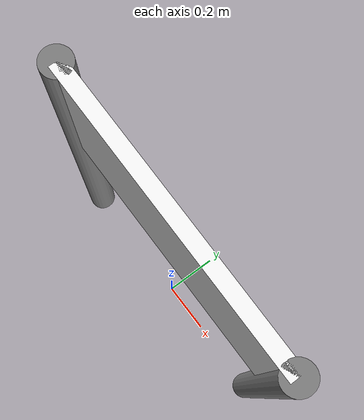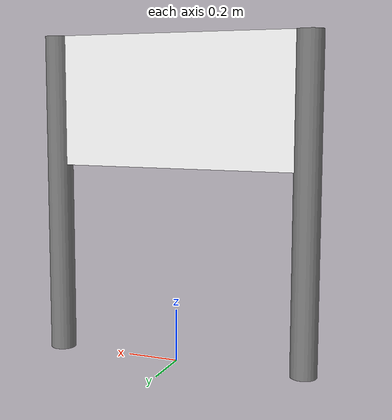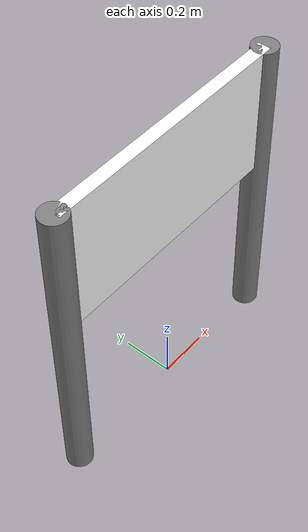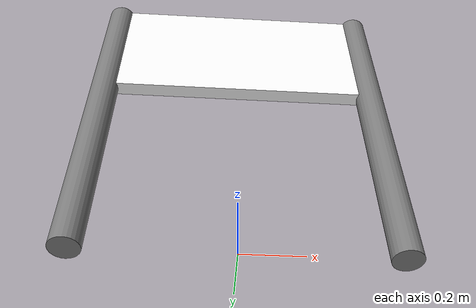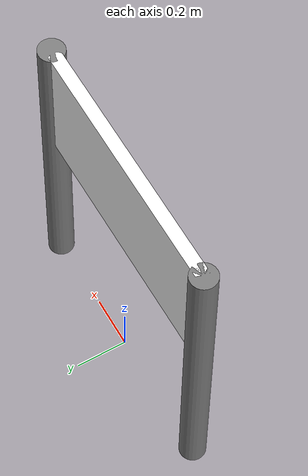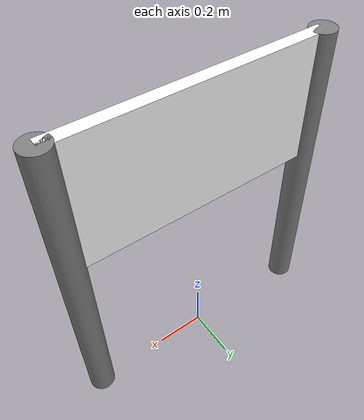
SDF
<?xml version="1.0"?>
<sdf version="1.6">
    <model name = "whiteboard">
        <static>true</static>
        <pose>0 0 0 0 0 0</pose>

        <!-- Vertical Poles-->
        <link name="stand_pole_left">
        <pose>-0.5 0 0.625 0 0 0</pose>
        <visual name="stand_pole_left_visual">
            <geometry>
            <cylinder>
                <radius>0.05</radius>
                <length>1.25</length>
            </cylinder>
            </geometry>
            <material>
            <ambient>0.5 0.5 0.5 1</ambient>
            </material>
        </visual>
        </link>

        <link name="stand_pole_right">
        <pose>0.5 0 0.625 0 0 0</pose>
        <visual name="stand_pole_right_visual">
            <geometry>
            <cylinder>
                <radius>0.05</radius>
                <length>1.25</length>
            </cylinder>
            </geometry>
            <material>
            <ambient>0.5 0.5 0.5 1</ambient>
            </material>
        </visual>
        </link>

        <link name="whiteboard_link">
        <!-- Positioned at the right height with rotation -->
        <pose>0 0 1 -1.5708 0 0</pose>
        <visual name="whiteboard_visual">
            <geometry>
            <box>
                <size>1 0.5 0.05</size>
            </box>
            </geometry>
            <material>
            <ambient>1 1 1 1</ambient>
            </material>
        </visual>
        <collision name="whiteboard_collision">
            <geometry>
            <box>
                <size>1.5 0.5 0.05</size>
            </box>
            </geometry>
        </collision>
        </link>
    </model>
</sdf>
